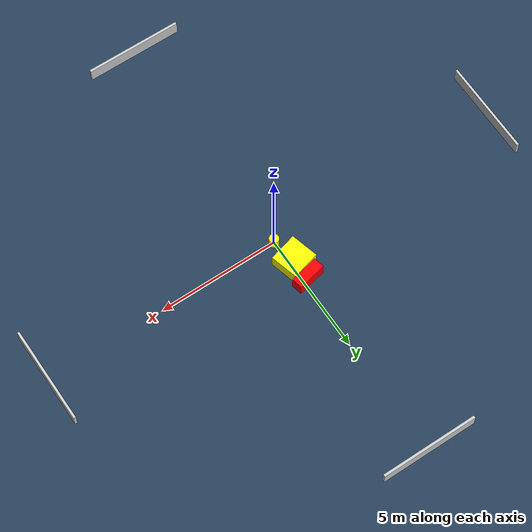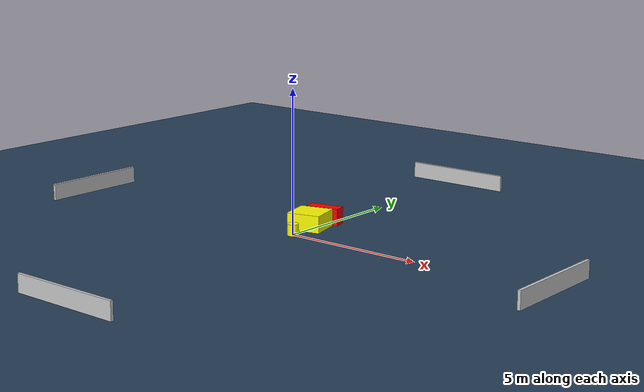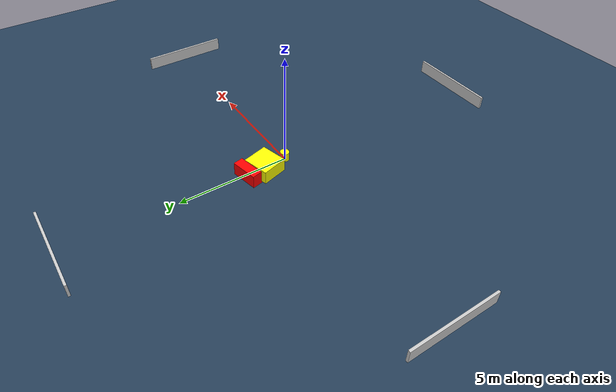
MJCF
<?xml version="1.0" ?>
<mujoco model="generated_environment">
  <option timestep="0.01" integrator="RK4" cone="elliptic"/>
  <default>
    <geom density="1"/>
  </default>
  <asset>
    <texture builtin="gradient" height="3072" name="skybox" rgb1="0.3 0.5 0.7" rgb2="0 0 0" type="skybox" width="512"/>
    <texture builtin="checker" height="300" name="groundplane" rgb1="0.2 0.3 0.4" rgb2="0.1 0.2 0.3" type="2d" width="300"/>
    <material name="groundplane" reflectance="0.2" texrepeat="5 5" texture="groundplane"/>
  </asset>
  <worldbody>
    <light dir="0 0 -1" directional="true" pos="0 0 1.5"/>
    <geom condim="3" friction="0.5 0.005 0.001" material="groundplane" name="floor" pos="0 0 0" size="0 0 0.05" type="plane"/>
    <body name="walls">
      <geom name="wall_1" condim="4" pos="-10.0 0.0 0.3" rgba="0.800000011920929 0.800000011920929 0.800000011920929 1.0" size="0.05 2.0 0.3" type="box"/>
      <geom name="wall_2" condim="4" pos="10.0 0.0 0.3" rgba="0.800000011920929 0.800000011920929 0.800000011920929 1.0" size="0.05 2.0 0.3" type="box"/>
      <geom name="wall_3" condim="4" pos="0.0 -10.0 0.3" rgba="0.800000011920929 0.800000011920929 0.800000011920929 1.0" size="2.0 0.05 0.3" type="box"/>
      <geom name="wall_4" condim="4" pos="0.0 10.0 0.3" rgba="0.800000011920929 0.800000011920929 0.800000011920929 1.0" size="2.0 0.05 0.3" type="box"/>
    </body>
    <body name="robot">
      <joint name="joint_x" type="slide" pos="0 0 0" axis="1 0 0"/>
      <joint name="joint_y" type="slide" pos="0 0 0" axis="0 1 0"/>
      <geom name="robot" type="cylinder" pos="0.0 0.0 0.2" size="0.2 0.2 0.0" mass="5.0" friction="1.0 0.005 0.0001" condim="4" rgba="1.0 1.0 0.0 1.0"/>
    </body>
    <body name="obstacle_1_movable">
      <geom name="obstacle_1_movable" condim="4" pos="-0.1683264950199271 1.107356445208073 0.3" euler="0 0 194.8757546108757" friction="0.0 0.005 0.001" rgba="1.0 1.0 0.0 1.0" size="0.597983505744897 0.583149584932003 0.3" type="box" mass="0.1"/>
      <joint type="free"/>
    </body>
    <body name="obstacle_2_static">
      <geom name="obstacle_2_static" condim="4" pos="-0.20909402880545824 1.9597669796883703 0.3" euler="0 0 281.8226348400935" friction="0.0 0.005 0.001" rgba="1.0 0.0 0.0 1.0" size="0.22686383366514207 0.6006329622331787 0.3" type="box"/>
    </body>
  </worldbody>
  <actuator>
    <motor name="actuator_x" joint="joint_x" gear="1" ctrlrange="-1 1"/>
    <motor name="actuator_y" joint="joint_y" gear="1" ctrlrange="-1 1"/>
  </actuator>
</mujoco>
